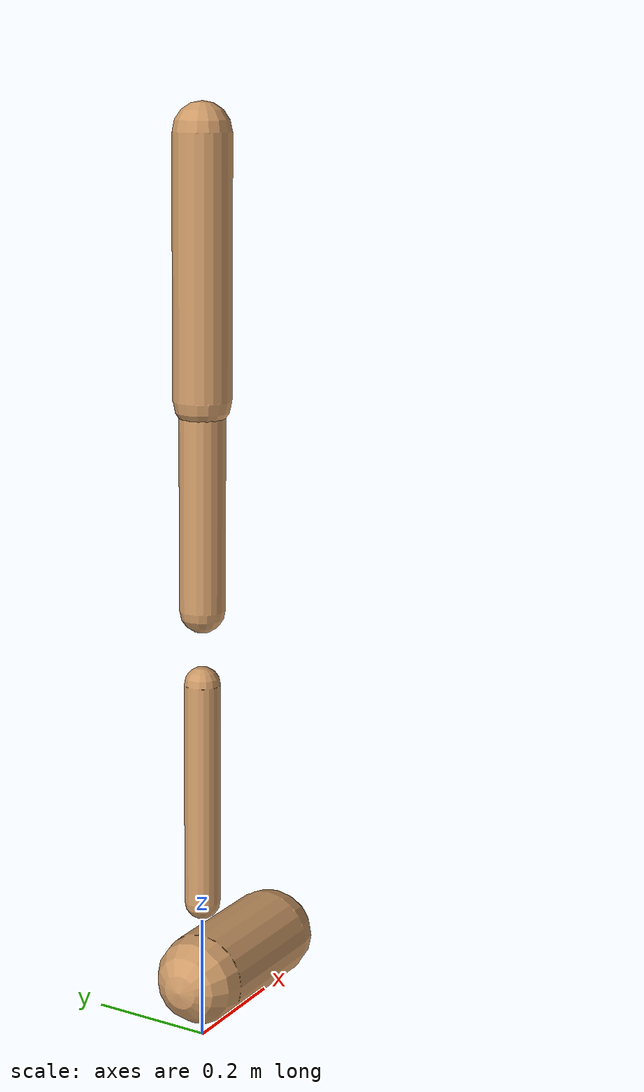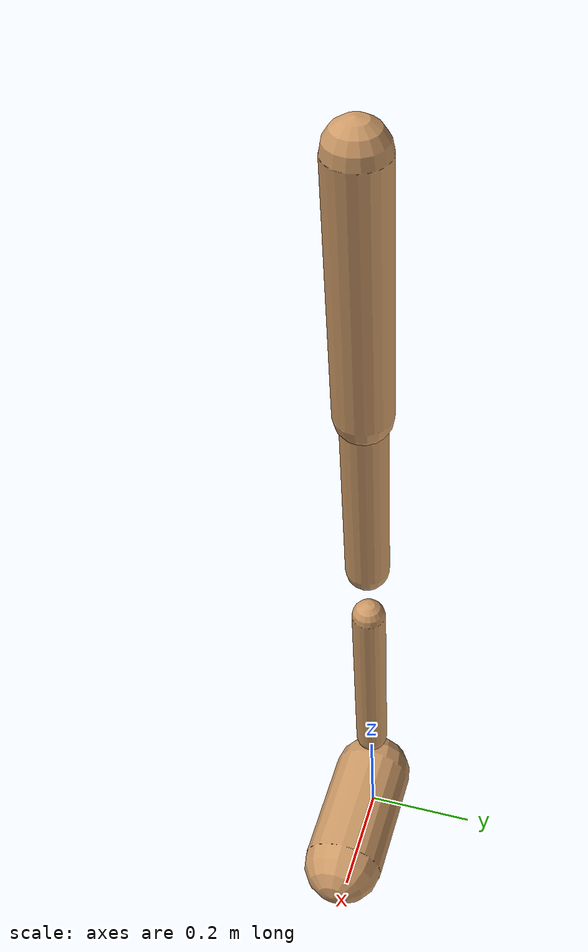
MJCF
<mujoco model="walker2d">
  <compiler angle="degree" coordinate="global" inertiafromgeom="true" />
  <default>
    <joint armature="0.01" damping=".1" limited="true" />
    <geom conaffinity="0" condim="3" contype="1" density="1000" friction="0.8 .1 .1" rgba="0.8 0.6 .4 1" />
  </default>
  <option integrator="RK4" timestep="0.002" />
  <worldbody>

    <body name="torso" pos="0 0 -0.2554972959230836">
      <joint armature="0" axis="1 0 0" damping="0" limited="false" name="ignorex" pos="0 0 0" stiffness="0" type="slide" />
      <joint armature="0" axis="0 0 1" damping="0" limited="false" name="ignorez" pos="0 0 0" ref="1.25" stiffness="0" type="slide" />
      <joint armature="0" axis="0 1 0" damping="0" limited="false" name="ignorey" pos="0 0 0" stiffness="0" type="hinge" />
      <geom fromto="0 0 1.45 0 0 1.05" name="torso_geom" size="0.045243984456348356" type="capsule" />
      <body name="thigh">
        <joint axis="0 -1 0" name="thigh_joint" pos="0 0 1.05" range="-150 0" type="hinge" />
        <geom fromto="0.0 0.0 1.05 0.0 0.0 0.7210250349109344" name="thigh_geom" size="0.03596340576078202" type="capsule" />
        <body name="leg" pos="0.0 0.0 0.12102503491093441">
          <joint axis="0 -1 0" name="leg_joint" pos="0 0 0.6" range="-150 0" type="hinge" />
          <geom fromto="0.0 0.0 0.6 0.0 0.0 0.23447226101214927" name="leg_geom" size="0.028770724608625616" type="capsule" />
          <body name="foot" pos="0.0 0.0 0.13447226101214926">
            <joint axis="0 -1 0" name="foot_joint" pos="0 0 0.1" range="-45 45" type="hinge" />
            <geom fromto="-0.0 0.0 0.1 0.21083169985303593 0.0 0.1" name="foot_geom" size="0.07394157393541126" type="capsule" />
          </body>
        </body>
      </body>

      <body name="thigh_left">
        <joint axis="0 -1 0" name="thigh_left_joint" pos="0 0 1.05" range="-150 0" type="hinge" />
        <geom fromto="0.0 0.0 1.05 0.0 0.0 0.7210250349109344" name="thigh_left_geom" rgba=".7 .3 .6 1" size="0.03596340576078202" type="capsule" />
        <body name="leg_left" pos="0.0 0.0 0.12102503491093441">
          <joint axis="0 -1 0" name="leg_left_joint" pos="0 0 0.6" range="-150 0" type="hinge" />
          <geom fromto="0.0 0.0 0.6 0.0 0.0 0.23447226101214927" name="leg_left_geom" rgba=".7 .3 .6 1" size="0.028770724608625616" type="capsule" />
          <body name="foot_left" pos="0.0 0.0 0.13447226101214926">
            <joint axis="0 -1 0" name="foot_left_joint" pos="0 0 0.1" range="-45 45" type="hinge" />
            <geom fromto="-0.0 0.0 0.1 0.21083169985303593 0.0 0.1" name="foot_left_geom" rgba=".7 .3 .6 1" size="0.07394157393541126" type="capsule" />
          </body>
        </body>
      </body>
    </body>
  </worldbody>
  <actuator>

    <motor ctrllimited="true" ctrlrange="-1.0 1.0" gear="100" joint="thigh_joint" />
    <motor ctrllimited="true" ctrlrange="-1.0 1.0" gear="100" joint="leg_joint" />
    <motor ctrllimited="true" ctrlrange="-1.0 1.0" gear="100" joint="foot_joint" />
    <motor ctrllimited="true" ctrlrange="-1.0 1.0" gear="100" joint="thigh_left_joint" />
    <motor ctrllimited="true" ctrlrange="-1.0 1.0" gear="100" joint="leg_left_joint" />
    <motor ctrllimited="true" ctrlrange="-1.0 1.0" gear="100" joint="foot_left_joint" />

  </actuator>
</mujoco>
